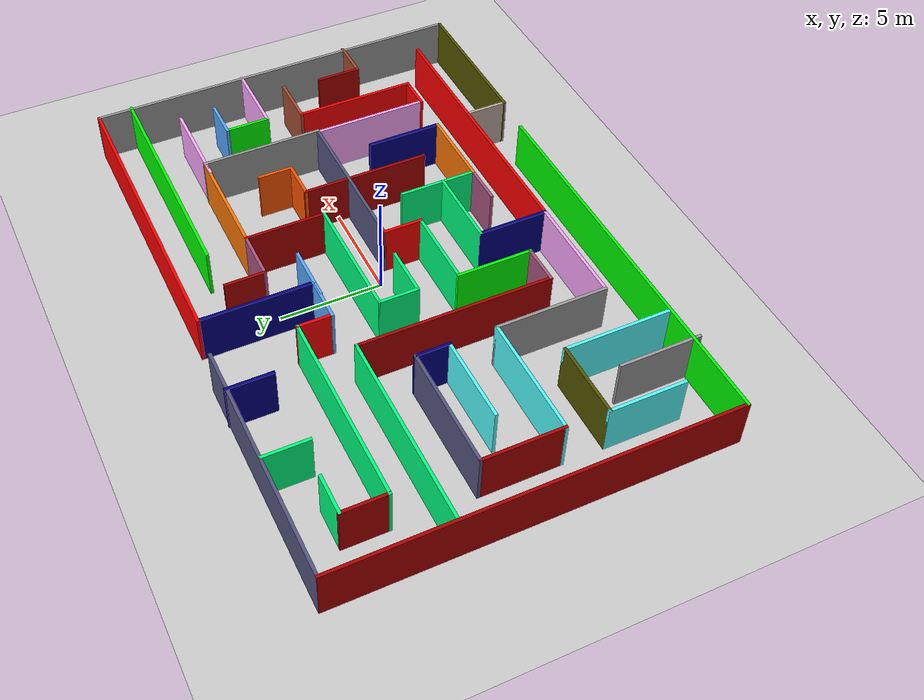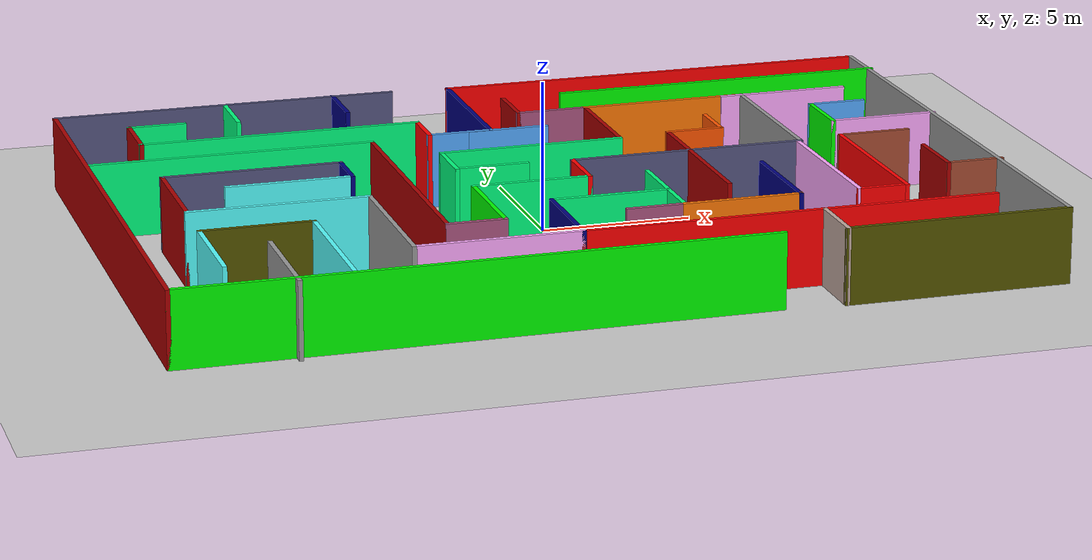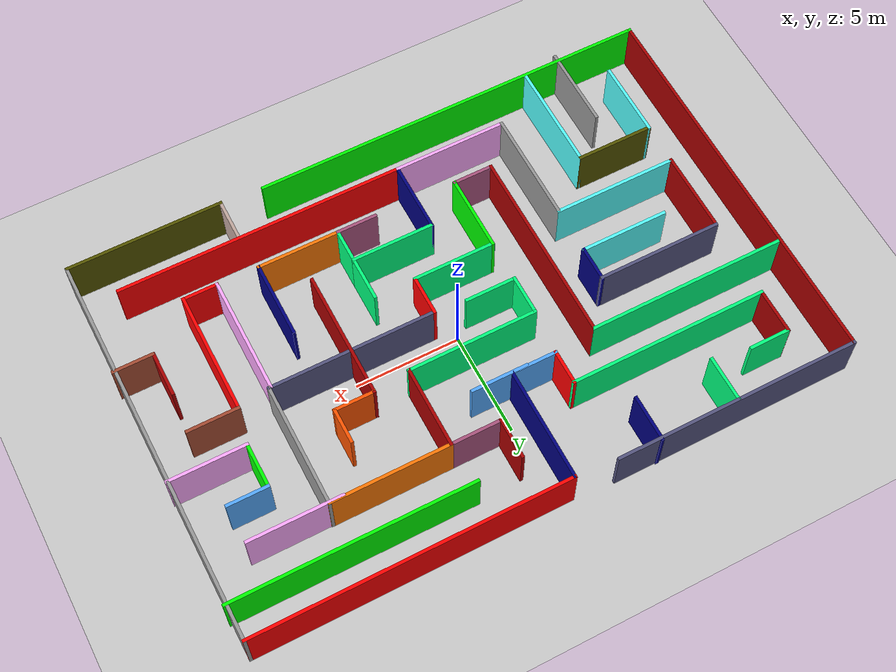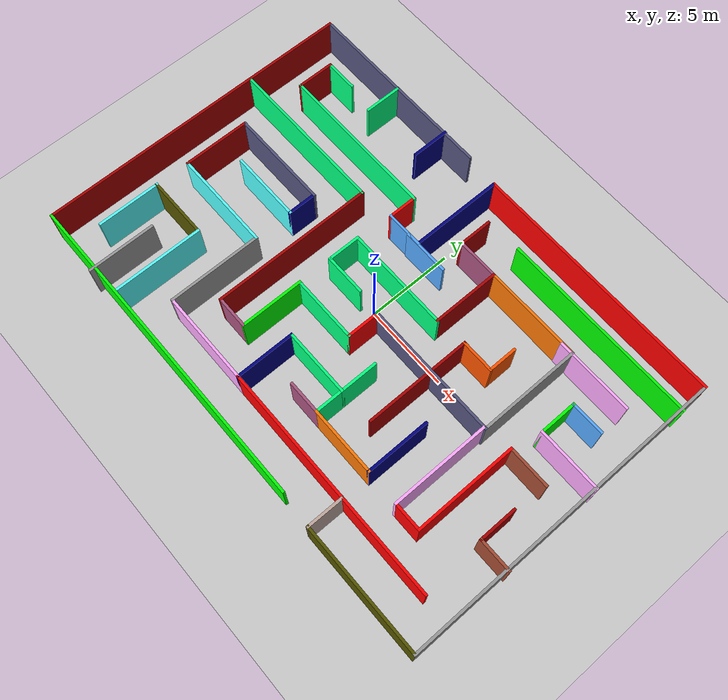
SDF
<sdf version="1.6">
 <world name="default">
  <light name="sun" type="directional">
   <pose>0 0 10 0 -0 0</pose>
   <diffuse>0.8 0.8 0.8 1</diffuse>
   <specular>0.1 0.1 0.1 1</specular>
   <attenuation>
    <range>1000</range>
    <constant>0.9</constant>
    <linear>0.01</linear>
    <quadratic>0.001</quadratic>
   </attenuation>
   <direction>-0.5 0.5 -1</direction>
  </light>
  <model name="ground_plane">
   <static>1</static>
   <link name="link">
    <collision name="collision">
     <geometry><plane><normal>0 0 1</normal><size>100 100</size></plane></geometry>
     <surface><friction><ode><mu>100</mu><mu2>50</mu2></ode></friction></surface>
    </collision>
    <visual name="visual">
     <cast_shadows>0</cast_shadows>
     <geometry><plane><normal>0 0 1</normal><size>100 100</size></plane></geometry>
     <material>
      <script><uri>file://media/materials/scripts/gazebo.material</uri><name>Gazebo/Grey</name></script>
     </material>
    </visual>
   </link>
  </model>
  <gravity>0 0 -9.8</gravity>
  <magnetic_field>6e-06 2.3e-05 -4.2e-05</magnetic_field>
  <atmosphere type="adiabatic"/>
  <physics name="default_physics" default="0" type="ode">
   <max_step_size>0.001</max_step_size>
   <real_time_factor>1</real_time_factor>
   <real_time_update_rate>1000</real_time_update_rate>
  </physics>
  <scene><ambient>0.4 0.4 0.4 1</ambient><background>0.7 0.7 0.7 1</background><shadows>1</shadows></scene>
  <spherical_coordinates>
   <surface_model>EARTH_WGS84</surface_model>
   <latitude_deg>0</latitude_deg>
   <longitude_deg>0</longitude_deg>
   <elevation>0</elevation>
   <heading_deg>0</heading_deg>
  </spherical_coordinates>
  <model name="medium_coloured_maze">
   <pose>-0.057913 -0.424976 0 0 -0 0</pose>
   <link name="Wall_0">
    <collision name="Wall_0_Collision">
     <geometry><box><size>19 0.15 2.5</size></box></geometry>
     <pose>0 0 1.25 0 -0 0</pose>
    </collision>
    <visual name="Wall_0_Visual">
     <pose>0 0 1.25 0 -0 0</pose>
     <geometry><box><size>19 0.15 2.5</size></box></geometry>
     <material>
      <script><uri>file://media/materials/scripts/gazebo.material</uri><name>Gazebo/Grey</name></script>
      <ambient>0.666667 0 0 1</ambient>
     </material>
    </visual>
    <pose>-14.2862 0.111227 0 0 0 -1.5708</pose>
   </link>
   <link name="Wall_1">
    <collision name="Wall_1_Collision">
     <geometry><box><size>19.25 0.15 2.5</size></box></geometry>
     <pose>0 0 1.25 0 -0 0</pose>
    </collision>
    <visual name="Wall_1_Visual">
     <pose>0 0 1.25 0 -0 0</pose>
     <geometry><box><size>19.25 0.15 2.5</size></box></geometry>
     <material>
      <script><uri>file://media/materials/scripts/gazebo.material</uri><name>Gazebo/Grey</name></script>
      <ambient>0 1 0 1</ambient>
     </material>
    </visual>
    <pose>-4.73615 -9.31377 0 0 -0 0</pose>
   </link>
   <link name="Wall_10">
    <collision name="Wall_10_Collision">
     <geometry><box><size>2.25 0.15 2.5</size></box></geometry>
     <pose>0 0 1.25 0 -0 0</pose>
    </collision>
    <visual name="Wall_10_Visual">
     <pose>0 0 1.25 0 -0 0</pose>
     <geometry><box><size>2.25 0.15 2.5</size></box></geometry>
     <material>
      <script><uri>file://media/materials/scripts/gazebo.material</uri><name>Gazebo/Grey</name></script>
      <ambient>0.666667 0 0 1</ambient>
     </material>
    </visual>
    <pose>-12.1169 6.6789 0 0 -0 1.5708</pose>
   </link>
   <link name="Wall_11">
    <collision name="Wall_11_Collision">
     <geometry><box><size>2 0.15 2.5</size></box></geometry>
     <pose>0 0 1.25 0 -0 0</pose>
    </collision>
    <visual name="Wall_11_Visual">
     <pose>0 0 1.25 0 -0 0</pose>
     <geometry><box><size>2 0.15 2.5</size></box></geometry>
     <material>
      <script><uri>file://media/materials/scripts/gazebo.material</uri><name>Gazebo/Grey</name></script>
      <ambient>0 1 0.498039 1</ambient>
     </material>
    </visual>
    <pose>-11.1919 7.7289 0 0 -0 0</pose>
   </link>
   <link name="Wall_13">
    <collision name="Wall_13_Collision">
     <geometry><box><size>11.75 0.15 2.5</size></box></geometry>
     <pose>0 0 1.25 0 -0 0</pose>
    </collision>
    <visual name="Wall_13_Visual">
     <pose>0 0 1.25 0 -0 0</pose>
     <geometry><box><size>11.75 0.15 2.5</size></box></geometry>
     <material>
      <script><uri>file://media/materials/scripts/gazebo.material</uri><name>Gazebo/Grey</name></script>
      <ambient>0.333333 0.333333 0.498039 1</ambient>
     </material>
    </visual>
    <pose>-8.48615 9.53623 0 0 -0 0</pose>
   </link>
   <link name="Wall_15">
    <collision name="Wall_15_Collision">
     <geometry><box><size>2.25 0.15 2.5</size></box></geometry>
     <pose>0 0 1.25 0 -0 0</pose>
    </collision>
    <visual name="Wall_15_Visual">
     <pose>0 0 1.25 0 -0 0</pose>
     <geometry><box><size>2.25 0.15 2.5</size></box></geometry>
     <material>
      <script><uri>file://media/materials/scripts/gazebo.material</uri><name>Gazebo/Grey</name></script>
      <ambient>0 1 0.498039 1</ambient>
     </material>
    </visual>
    <pose>-8.47981 8.45384 0 0 0 -1.5708</pose>
   </link>
   <link name="Wall_18">
    <collision name="Wall_18_Collision">
     <geometry><box><size>2.25 0.15 2.5</size></box></geometry>
     <pose>0 0 1.25 0 -0 0</pose>
    </collision>
    <visual name="Wall_18_Visual">
     <pose>0 0 1.25 0 -0 0</pose>
     <geometry><box><size>2.25 0.15 2.5</size></box></geometry>
     <material>
      <script><uri>file://media/materials/scripts/gazebo.material</uri><name>Gazebo/Grey</name></script>
      <ambient>0 0 0.498039 1</ambient>
     </material>
    </visual>
    <pose>-4.69991 8.53531 0 0 0 -1.5708</pose>
   </link>
   <link name="Wall_20">
    <collision name="Wall_20_Collision">
     <geometry><box><size>9.5 0.15 2.5</size></box></geometry>
     <pose>0 0 1.25 0 -0 0</pose>
    </collision>
    <visual name="Wall_20_Visual">
     <pose>0 0 1.25 0 -0 0</pose>
     <geometry><box><size>9.5 0.15 2.5</size></box></geometry>
     <material>
      <script><uri>file://media/materials/scripts/gazebo.material</uri><name>Gazebo/Grey</name></script>
      <ambient>0 1 0.498039 1</ambient>
     </material>
    </visual>
    <pose>-9.46955 3.79078 0 0 -0 0</pose>
   </link>
   <link name="Wall_21">
    <collision name="Wall_21_Collision">
     <geometry><box><size>9.5 0.15 2.5</size></box></geometry>
     <pose>0 0 1.25 0 -0 0</pose>
    </collision>
    <visual name="Wall_21_Visual">
     <pose>0 0 1.25 0 -0 0</pose>
     <geometry><box><size>9.5 0.15 2.5</size></box></geometry>
     <material>
      <script><uri>file://media/materials/scripts/gazebo.material</uri><name>Gazebo/Grey</name></script>
      <ambient>0.666667 0 0 1</ambient>
     </material>
    </visual>
    <pose>-4.79455 -0.884224 0 0 0 -1.5708</pose>
   </link>
   <link name="Wall_22">
    <collision name="Wall_22_Collision">
     <geometry><box><size>2 0.15 2.5</size></box></geometry>
     <pose>0 0 1.25 0 -0 0</pose>
    </collision>
    <visual name="Wall_22_Visual">
     <pose>0 0 1.25 0 -0 0</pose>
     <geometry><box><size>2 0.15 2.5</size></box></geometry>
     <material>
      <script><uri>file://media/materials/scripts/gazebo.material</uri><name>Gazebo/Grey</name></script>
      <ambient>0.666667 0.333333 0.498039 1</ambient>
     </material>
    </visual>
    <pose>-3.86955 -5.55922 0 0 -0 0</pose>
   </link>
   <link name="Wall_23">
    <collision name="Wall_23_Collision">
     <geometry><box><size>3.75 0.15 2.5</size></box></geometry>
     <pose>0 0 1.25 0 -0 0</pose>
    </collision>
    <visual name="Wall_23_Visual">
     <pose>0 0 1.25 0 -0 0</pose>
     <geometry><box><size>3.75 0.15 2.5</size></box></geometry>
     <material>
      <script><uri>file://media/materials/scripts/gazebo.material</uri><name>Gazebo/Grey</name></script>
      <ambient>0 1 0 1</ambient>
     </material>
    </visual>
    <pose>-2.94455 -3.75922 0 0 -0 1.5708</pose>
   </link>
   <link name="Wall_24">
    <collision name="Wall_24_Collision">
     <geometry><box><size>4 0.15 2.5</size></box></geometry>
     <pose>0 0 1.25 0 -0 0</pose>
    </collision>
    <visual name="Wall_24_Visual">
     <pose>0 0 1.25 0 -0 0</pose>
     <geometry><box><size>4 0.15 2.5</size></box></geometry>
     <material>
      <script><uri>file://media/materials/scripts/gazebo.material</uri><name>Gazebo/Grey</name></script>
      <ambient>0 1 0.498039 1</ambient>
     </material>
    </visual>
    <pose>-1.01955 -1.95922 0 0 -0 0</pose>
   </link>
   <link name="Wall_25">
    <collision name="Wall_25_Collision">
     <geometry><box><size>2 0.15 2.5</size></box></geometry>
     <pose>0 0 1.25 0 -0 0</pose>
    </collision>
    <visual name="Wall_25_Visual">
     <pose>0 0 1.25 0 -0 0</pose>
     <geometry><box><size>2 0.15 2.5</size></box></geometry>
     <material>
      <script><uri>file://media/materials/scripts/gazebo.material</uri><name>Gazebo/Grey</name></script>
      <ambient>1 0 0 1</ambient>
     </material>
    </visual>
    <pose>0.905454 -1.03422 0 0 -0 1.5708</pose>
   </link>
   <link name="Wall_26">
    <collision name="Wall_26_Collision">
     <geometry><box><size>8 0.15 2.5</size></box></geometry>
     <pose>0 0 1.25 0 -0 0</pose>
    </collision>
    <visual name="Wall_26_Visual">
     <pose>0 0 1.25 0 -0 0</pose>
     <geometry><box><size>8 0.15 2.5</size></box></geometry>
     <material>
      <script><uri>file://media/materials/scripts/gazebo.material</uri><name>Gazebo/Grey</name></script>
      <ambient>0.333333 0.333333 0.498039 1</ambient>
     </material>
    </visual>
    <pose>4.83045 -0.109224 0 0 -0 0</pose>
   </link>
   <link name="Wall_27">
    <collision name="Wall_27_Collision">
     <geometry><box><size>6 0.15 2.5</size></box></geometry>
     <pose>0 0 1.25 0 -0 0</pose>
    </collision>
    <visual name="Wall_27_Visual">
     <pose>0 0 1.25 0 -0 0</pose>
     <geometry><box><size>6 0.15 2.5</size></box></geometry>
     <material>
      <script><uri>file://media/materials/scripts/gazebo.material</uri><name>Gazebo/Grey</name></script>
      <ambient>0 0 0 1</ambient>
     </material>
    </visual>
    <pose>8.75545 2.81578 0 0 -0 1.5708</pose>
   </link>
   <link name="Wall_28">
    <collision name="Wall_28_Collision">
     <geometry><box><size>5.75 0.15 2.5</size></box></geometry>
     <pose>0 0 1.25 0 -0 0</pose>
    </collision>
    <visual name="Wall_28_Visual">
     <pose>0 0 1.25 0 -0 0</pose>
     <geometry><box><size>5.75 0.15 2.5</size></box></geometry>
     <material>
      <script><uri>file://media/materials/scripts/gazebo.material</uri><name>Gazebo/Grey</name></script>
      <ambient>0.996078 0.47451 0.0196078 1</ambient>
     </material>
    </visual>
    <pose>5.95545 5.74078 0 0 -0 3.14159</pose>
   </link>
   <link name="Wall_29">
    <collision name="Wall_29_Collision">
     <geometry><box><size>4 0.15 2.5</size></box></geometry>
     <pose>0 0 1.25 0 -0 0</pose>
    </collision>
    <visual name="Wall_29_Visual">
     <pose>0 0 1.25 0 -0 0</pose>
     <geometry><box><size>4 0.15 2.5</size></box></geometry>
     <material>
      <script><uri>file://media/materials/scripts/gazebo.material</uri><name>Gazebo/Grey</name></script>
      <ambient>0.666667 0 0 1</ambient>
     </material>
    </visual>
    <pose>3.15545 3.81578 0 0 0 -1.5708</pose>
   </link>
   <link name="Wall_3">
    <collision name="Wall_3_Collision">
     <geometry><box><size>7.5 0.15 2.5</size></box></geometry>
     <pose>0 0 1.25 0 -0 0</pose>
    </collision>
    <visual name="Wall_3_Visual">
     <pose>0 0 1.25 0 -0 0</pose>
     <geometry><box><size>7.5 0.15 2.5</size></box></geometry>
     <material>
      <script><uri>file://media/materials/scripts/gazebo.material</uri><name>Gazebo/Grey</name></script>
      <ambient>0.333333 0.333333 0 1</ambient>
     </material>
    </visual>
    <pose>10.5081 -9.4711 0 0 -0 0</pose>
   </link>
   <link name="Wall_30">
    <collision name="Wall_30_Collision">
     <geometry><box><size>6.25 0.15 2.5</size></box></geometry>
     <pose>0 0 1.25 0 -0 0</pose>
    </collision>
    <visual name="Wall_30_Visual">
     <pose>0 0 1.25 0 -0 0</pose>
     <geometry><box><size>6.25 0.15 2.5</size></box></geometry>
     <material>
      <script><uri>file://media/materials/scripts/gazebo.material</uri><name>Gazebo/Grey</name></script>
      <ambient>0 1 0.498039 1</ambient>
     </material>
    </visual>
    <pose>0.105454 1.89078 0 0 -0 3.14159</pose>
   </link>
   <link name="Wall_31">
    <collision name="Wall_31_Collision">
     <geometry><box><size>2 0.15 2.5</size></box></geometry>
     <pose>0 0 1.25 0 -0 0</pose>
    </collision>
    <visual name="Wall_31_Visual">
     <pose>0 0 1.25 0 -0 0</pose>
     <geometry><box><size>2 0.15 2.5</size></box></geometry>
     <material>
      <script><uri>file://media/materials/scripts/gazebo.material</uri><name>Gazebo/Grey</name></script>
      <ambient>0 1 0.498039 1</ambient>
     </material>
    </visual>
    <pose>-2.94455 0.965776 0 0 0 -1.5708</pose>
   </link>
   <link name="Wall_32">
    <collision name="Wall_32_Collision">
     <geometry><box><size>2.5 0.15 2.5</size></box></geometry>
     <pose>0 0 1.25 0 -0 0</pose>
    </collision>
    <visual name="Wall_32_Visual">
     <pose>0 0 1.25 0 -0 0</pose>
     <geometry><box><size>2.5 0.15 2.5</size></box></geometry>
     <material>
      <script><uri>file://media/materials/scripts/gazebo.material</uri><name>Gazebo/Grey</name></script>
      <ambient>0 1 0.498039 1</ambient>
     </material>
    </visual>
    <pose>-1.76955 0.040776 0 0 -0 0</pose>
   </link>
   <link name="Wall_34">
    <collision name="Wall_34_Collision">
     <geometry><box><size>4.25 0.15 2.5</size></box></geometry>
     <pose>0 0 1.25 0 -0 0</pose>
    </collision>
    <visual name="Wall_34_Visual">
     <pose>0 0 1.25 0 -0 0</pose>
     <geometry><box><size>4.25 0.15 2.5</size></box></geometry>
     <material>
      <script><uri>file://media/materials/scripts/gazebo.material</uri><name>Gazebo/Grey</name></script>
      <ambient>0.333333 1 1 1</ambient>
     </material>
    </visual>
    <pose>-8.39882 0.186302 0 0 -0 0</pose>
   </link>
   <link name="Wall_35">
    <collision name="Wall_35_Collision">
     <geometry><box><size>1.75 0.15 2.5</size></box></geometry>
     <pose>0 0 1.25 0 -0 0</pose>
    </collision>
    <visual name="Wall_35_Visual">
     <pose>0 0 1.25 0 -0 0</pose>
     <geometry><box><size>1.75 0.15 2.5</size></box></geometry>
     <material>
      <script><uri>file://media/materials/scripts/gazebo.material</uri><name>Gazebo/Grey</name></script>
      <ambient>0 0 0.498039 1</ambient>
     </material>
    </visual>
    <pose>-6.34882 0.986302 0 0 -0 1.5708</pose>
   </link>
   <link name="Wall_36">
    <collision name="Wall_36_Collision">
     <geometry><box><size>6 0.15 2.5</size></box></geometry>
     <pose>0 0 1.25 0 -0 0</pose>
    </collision>
    <visual name="Wall_36_Visual">
     <pose>0 0 1.25 0 -0 0</pose>
     <geometry><box><size>6 0.15 2.5</size></box></geometry>
     <material>
      <script><uri>file://media/materials/scripts/gazebo.material</uri><name>Gazebo/Grey</name></script>
      <ambient>0.333333 0.333333 0.498039 1</ambient>
     </material>
    </visual>
    <pose>-9.27382 1.7863 0 0 -0 3.14159</pose>
   </link>
   <link name="Wall_37">
    <collision name="Wall_37_Collision">
     <geometry><box><size>4 0.15 2.5</size></box></geometry>
     <pose>0 0 1.25 0 -0 0</pose>
    </collision>
    <visual name="Wall_37_Visual">
     <pose>0 0 1.25 0 -0 0</pose>
     <geometry><box><size>4 0.15 2.5</size></box></geometry>
     <material>
      <script><uri>file://media/materials/scripts/gazebo.material</uri><name>Gazebo/Grey</name></script>
      <ambient>0.666667 0 0 1</ambient>
     </material>
    </visual>
    <pose>-12.1988 -0.138698 0 0 0 -1.5708</pose>
   </link>
   <link name="Wall_38">
    <collision name="Wall_38_Collision">
     <geometry><box><size>6 0.15 2.5</size></box></geometry>
     <pose>0 0 1.25 0 -0 0</pose>
    </collision>
    <visual name="Wall_38_Visual">
     <pose>0 0 1.25 0 -0 0</pose>
     <geometry><box><size>6 0.15 2.5</size></box></geometry>
     <material>
      <script><uri>file://media/materials/scripts/gazebo.material</uri><name>Gazebo/Grey</name></script>
      <ambient>0.333333 1 1 1</ambient>
     </material>
    </visual>
    <pose>-9.27382 -2.0637 0 0 -0 0</pose>
   </link>
   <link name="Wall_39">
    <collision name="Wall_39_Collision">
     <geometry><box><size>5.5 0.15 2.5</size></box></geometry>
     <pose>0 0 1.25 0 -0 0</pose>
    </collision>
    <visual name="Wall_39_Visual">
     <pose>0 0 1.25 0 -0 0</pose>
     <geometry><box><size>5.5 0.15 2.5</size></box></geometry>
     <material>
      <script><uri>file://media/materials/scripts/gazebo.material</uri><name>Gazebo/Grey</name></script>
      <ambient>0 0 0 1</ambient>
     </material>
    </visual>
    <pose>-6.34882 -4.7387 0 0 0 -1.5708</pose>
   </link>
   <link name="Wall_4">
    <collision name="Wall_4_Collision">
     <geometry><box><size>19 0.15 2.5</size></box></geometry>
     <pose>0 0 1.25 0 -0 0</pose>
    </collision>
    <visual name="Wall_4_Visual">
     <pose>0 0 1.25 0 -0 0</pose>
     <geometry><box><size>19 0.15 2.5</size></box></geometry>
     <material>
      <script><uri>file://media/materials/scripts/gazebo.material</uri><name>Gazebo/Grey</name></script>
      <ambient>0 0 0 1</ambient>
     </material>
    </visual>
    <pose>14.1831 -0.046098 0 0 -0 1.5708</pose>
   </link>
   <link name="Wall_40">
    <collision name="Wall_40_Collision">
     <geometry><box><size>5.5 0.15 2.5</size></box></geometry>
     <pose>0 0 1.25 0 -0 0</pose>
    </collision>
    <visual name="Wall_40_Visual">
     <pose>0 0 1.25 0 -0 0</pose>
     <geometry><box><size>5.5 0.15 2.5</size></box></geometry>
     <material>
      <script><uri>file://media/materials/scripts/gazebo.material</uri><name>Gazebo/Grey</name></script>
      <ambient>1 0.666667 1 1</ambient>
     </material>
    </visual>
    <pose>-3.67382 -7.4137 0 0 -0 0</pose>
   </link>
   <link name="Wall_41">
    <collision name="Wall_41_Collision">
     <geometry><box><size>3.5 0.15 2.5</size></box></geometry>
     <pose>0 0 1.25 0 -0 0</pose>
    </collision>
    <visual name="Wall_41_Visual">
     <pose>0 0 1.25 0 -0 0</pose>
     <geometry><box><size>3.5 0.15 2.5</size></box></geometry>
     <material>
      <script><uri>file://media/materials/scripts/gazebo.material</uri><name>Gazebo/Grey</name></script>
      <ambient>0 0 0.498039 1</ambient>
     </material>
    </visual>
    <pose>-0.99882 -5.7387 0 0 -0 1.5708</pose>
   </link>
   <link name="Wall_42">
    <collision name="Wall_42_Collision">
     <geometry><box><size>4 0.15 2.5</size></box></geometry>
     <pose>0 0 1.25 0 -0 0</pose>
    </collision>
    <visual name="Wall_42_Visual">
     <pose>0 0 1.25 0 -0 0</pose>
     <geometry><box><size>4 0.15 2.5</size></box></geometry>
     <material>
      <script><uri>file://media/materials/scripts/gazebo.material</uri><name>Gazebo/Grey</name></script>
      <ambient>0 1 0.498039 1</ambient>
     </material>
    </visual>
    <pose>0.92618 -4.0637 0 0 -0 0</pose>
   </link>
   <link name="Wall_43">
    <collision name="Wall_43_Collision">
     <geometry><box><size>1.75 0.15 2.5</size></box></geometry>
     <pose>0 0 1.25 0 -0 0</pose>
    </collision>
    <visual name="Wall_43_Visual">
     <pose>0 0 1.25 0 -0 0</pose>
     <geometry><box><size>1.75 0.15 2.5</size></box></geometry>
     <material>
      <script><uri>file://media/materials/scripts/gazebo.material</uri><name>Gazebo/Grey</name></script>
      <ambient>0 1 0.498039 1</ambient>
     </material>
    </visual>
    <pose>2.85118 -4.8637 0 0 0 -1.5708</pose>
   </link>
   <link name="Wall_44">
    <collision name="Wall_44_Collision">
     <geometry><box><size>4 0.15 2.5</size></box></geometry>
     <pose>0 0 1.25 0 -0 0</pose>
    </collision>
    <visual name="Wall_44_Visual">
     <pose>0 0 1.25 0 -0 0</pose>
     <geometry><box><size>4 0.15 2.5</size></box></geometry>
     <material>
      <script><uri>file://media/materials/scripts/gazebo.material</uri><name>Gazebo/Grey</name></script>
      <ambient>0.996078 0.47451 0.0196078 1</ambient>
     </material>
    </visual>
    <pose>4.77618 -5.6637 0 0 -0 0</pose>
   </link>
   <link name="Wall_45">
    <collision name="Wall_45_Collision">
     <geometry><box><size>3.75 0.15 2.5</size></box></geometry>
     <pose>0 0 1.25 0 -0 0</pose>
    </collision>
    <visual name="Wall_45_Visual">
     <pose>0 0 1.25 0 -0 0</pose>
     <geometry><box><size>3.75 0.15 2.5</size></box></geometry>
     <material>
      <script><uri>file://media/materials/scripts/gazebo.material</uri><name>Gazebo/Grey</name></script>
      <ambient>0 0 0.498039 1</ambient>
     </material>
    </visual>
    <pose>6.70118 -3.8637 0 0 -0 1.5708</pose>
   </link>
   <link name="Wall_47">
    <collision name="Wall_47_Collision">
     <geometry><box><size>1.75 0.15 2.5</size></box></geometry>
     <pose>0 0 1.25 0 -0 0</pose>
    </collision>
    <visual name="Wall_47_Visual">
     <pose>0 0 1.25 0 -0 0</pose>
     <geometry><box><size>1.75 0.15 2.5</size></box></geometry>
     <material>
      <script><uri>file://media/materials/scripts/gazebo.material</uri><name>Gazebo/Grey</name></script>
      <ambient>1 0.333333 0 1</ambient>
     </material>
    </visual>
    <pose>6.75228 2.89952 0 0 0 -1.5708</pose>
   </link>
   <link name="Wall_48">
    <collision name="Wall_48_Collision">
     <geometry><box><size>2 0.15 2.5</size></box></geometry>
     <pose>0 0 1.25 0 -0 0</pose>
    </collision>
    <visual name="Wall_48_Visual">
     <pose>0 0 1.25 0 -0 0</pose>
     <geometry><box><size>2 0.15 2.5</size></box></geometry>
     <material>
      <script><uri>file://media/materials/scripts/gazebo.material</uri><name>Gazebo/Grey</name></script>
      <ambient>1 0.333333 0 1</ambient>
     </material>
    </visual>
    <pose>5.82728 2.09952 0 0 -0 3.14159</pose>
   </link>
   <link name="Wall_49">
    <collision name="Wall_49_Collision">
     <geometry><box><size>6.25 0.15 2.5</size></box></geometry>
     <pose>0 0 1.25 0 -0 0</pose>
    </collision>
    <visual name="Wall_49_Visual">
     <pose>0 0 1.25 0 -0 0</pose>
     <geometry><box><size>6.25 0.15 2.5</size></box></geometry>
     <material>
      <script><uri>file://media/materials/scripts/gazebo.material</uri><name>Gazebo/Grey</name></script>
      <ambient>0.666667 0 0 1</ambient>
     </material>
    </visual>
    <pose>4.90228 -0.950477 0 0 0 -1.5708</pose>
   </link>
   <link name="Wall_5">
    <collision name="Wall_5_Collision">
     <geometry><box><size>15 0.15 2.5</size></box></geometry>
     <pose>0 0 1.25 0 -0 0</pose>
    </collision>
    <visual name="Wall_5_Visual">
     <pose>0 0 1.25 0 -0 0</pose>
     <geometry><box><size>15 0.15 2.5</size></box></geometry>
     <material>
      <script><uri>file://media/materials/scripts/gazebo.material</uri><name>Gazebo/Grey</name></script>
      <ambient>1 0 0 1</ambient>
     </material>
    </visual>
    <pose>6.7581 9.3789 0 0 -0 3.14159</pose>
   </link>
   <link name="Wall_51">
    <collision name="Wall_51_Collision">
     <geometry><box><size>2.25 0.15 2.5</size></box></geometry>
     <pose>0 0 1.25 0 -0 0</pose>
    </collision>
    <visual name="Wall_51_Visual">
     <pose>0 0 1.25 0 -0 0</pose>
     <geometry><box><size>2.25 0.15 2.5</size></box></geometry>
     <material>
      <script><uri>file://media/materials/scripts/gazebo.material</uri><name>Gazebo/Grey</name></script>
      <ambient>0 1 0.498039 1</ambient>
     </material>
    </visual>
    <pose>2.85118 -3.0137 0 0 -0 1.5708</pose>
   </link>
   <link name="Wall_53">
    <collision name="Wall_53_Collision">
     <geometry><box><size>2 0.15 2.5</size></box></geometry>
     <pose>0 0 1.25 0 -0 0</pose>
    </collision>
    <visual name="Wall_53_Visual">
     <pose>0 0 1.25 0 -0 0</pose>
     <geometry><box><size>2 0.15 2.5</size></box></geometry>
     <material>
      <script><uri>file://media/materials/scripts/gazebo.material</uri><name>Gazebo/Grey</name></script>
      <ambient>0.666667 0.333333 0.498039 1</ambient>
     </material>
    </visual>
    <pose>1.92618 -5.6637 0 0 -0 3.14159</pose>
   </link>
   <link name="Wall_56">
    <collision name="Wall_56_Collision">
     <geometry><box><size>13.75 0.15 2.5</size></box></geometry>
     <pose>0 0 1.25 0 -0 0</pose>
    </collision>
    <visual name="Wall_56_Visual">
     <pose>0 0 1.25 0 -0 0</pose>
     <geometry><box><size>13.75 0.15 2.5</size></box></geometry>
     <material>
      <script><uri>file://media/materials/scripts/gazebo.material</uri><name>Gazebo/Grey</name></script>
      <ambient>1 0 0 1</ambient>
     </material>
    </visual>
    <pose>5.80118 -7.4137 0 0 -0 0</pose>
   </link>
   <link name="Wall_58">
    <collision name="Wall_58_Collision">
     <geometry><box><size>2.16629 0.15 2.5</size></box></geometry>
     <pose>0 0 1.25 0 -0 0</pose>
    </collision>
    <visual name="Wall_58_Visual">
     <pose>0 0 1.25 0 -0 0</pose>
     <geometry><box><size>2.16629 0.15 2.5</size></box></geometry>
     <material>
      <script><uri>file://media/materials/scripts/gazebo.material</uri><name>Gazebo/Grey</name></script>
      <ambient>0.760784 0.662745 0.627451 1</ambient>
     </material>
    </visual>
    <pose>6.84013 -8.46298 0 0 0 -1.57777</pose>
   </link>
   <link name="Wall_6">
    <collision name="Wall_6_Collision">
     <geometry><box><size>5.5 0.15 2.5</size></box></geometry>
     <pose>0 0 1.25 0 -0 0</pose>
    </collision>
    <visual name="Wall_6_Visual">
     <pose>0 0 1.25 0 -0 0</pose>
     <geometry><box><size>5.5 0.15 2.5</size></box></geometry>
     <material>
      <script><uri>file://media/materials/scripts/gazebo.material</uri><name>Gazebo/Grey</name></script>
      <ambient>0 0 0.498039 1</ambient>
     </material>
    </visual>
    <pose>-0.666901 6.7039 0 0 0 -1.5708</pose>
   </link>
   <link name="Wall_60">
    <collision name="Wall_60_Collision">
     <geometry><box><size>2.5 0.15 2.5</size></box></geometry>
     <pose>0 0 1.25 0 -0 0</pose>
    </collision>
    <visual name="Wall_60_Visual">
     <pose>0 0 1.25 0 -0 0</pose>
     <geometry><box><size>2.5 0.15 2.5</size></box></geometry>
     <material>
      <script><uri>file://media/materials/scripts/gazebo.material</uri><name>Gazebo/Bricks</name></script>
      <ambient>1 1 1 1</ambient>
     </material>
    </visual>
    <pose>11.4337 0.135142 0 0 -0 3.14159</pose>
   </link>
   <link name="Wall_61">
    <collision name="Wall_61_Collision">
     <geometry><box><size>6 0.15 2.5</size></box></geometry>
     <pose>0 0 1.25 0 -0 0</pose>
    </collision>
    <visual name="Wall_61_Visual">
     <pose>0 0 1.25 0 -0 0</pose>
     <geometry><box><size>6 0.15 2.5</size></box></geometry>
     <material>
      <script><uri>file://media/materials/scripts/gazebo.material</uri><name>Gazebo/Grey</name></script>
      <ambient>1 0 0 1</ambient>
     </material>
    </visual>
    <pose>10.2587 -2.78986 0 0 0 -1.5708</pose>
   </link>
   <link name="Wall_62">
    <collision name="Wall_62_Collision">
     <geometry><box><size>1.75 0.15 2.5</size></box></geometry>
     <pose>0 0 1.25 0 -0 0</pose>
    </collision>
    <visual name="Wall_62_Visual">
     <pose>0 0 1.25 0 -0 0</pose>
     <geometry><box><size>1.75 0.15 2.5</size></box></geometry>
     <material>
      <script><uri>file://media/materials/scripts/gazebo.material</uri><name>Gazebo/Grey</name></script>
      <ambient>1 0 0 1</ambient>
     </material>
    </visual>
    <pose>9.45865 -5.71486 0 0 -0 3.14159</pose>
   </link>
   <link name="Wall_63">
    <collision name="Wall_63_Collision">
     <geometry><box><size>5.75 0.15 2.5</size></box></geometry>
     <pose>0 0 1.25 0 -0 0</pose>
    </collision>
    <visual name="Wall_63_Visual">
     <pose>0 0 1.25 0 -0 0</pose>
     <geometry><box><size>5.75 0.15 2.5</size></box></geometry>
     <material>
      <script><uri>file://media/materials/scripts/gazebo.material</uri><name>Gazebo/Grey</name></script>
      <ambient>1 0.666667 1 1</ambient>
     </material>
    </visual>
    <pose>8.65865 -2.91486 0 0 -0 1.5708</pose>
   </link>
   <link name="Wall_65">
    <collision name="Wall_65_Collision">
     <geometry><box><size>2.25 0.15 2.5</size></box></geometry>
     <pose>0 0 1.25 0 -0 0</pose>
    </collision>
    <visual name="Wall_65_Visual">
     <pose>0 0 1.25 0 -0 0</pose>
     <geometry><box><size>2.25 0.15 2.5</size></box></geometry>
     <material>
      <script><uri>file://media/materials/scripts/gazebo.material</uri><name>Gazebo/Grey</name></script>
      <ambient>0.666667 0 0 1</ambient>
     </material>
    </visual>
    <pose>12.4362 -2.81236 0 0 0 -1.5708</pose>
   </link>
   <link name="Wall_66">
    <collision name="Wall_66_Collision">
     <geometry><box><size>2 0.15 2.5</size></box></geometry>
     <pose>0 0 1.25 0 -0 0</pose>
    </collision>
    <visual name="Wall_66_Visual">
     <pose>0 0 1.25 0 -0 0</pose>
     <geometry><box><size>2 0.15 2.5</size></box></geometry>
     <material>
      <script><uri>file://media/materials/scripts/gazebo.material</uri><name>Gazebo/Bricks</name></script>
      <ambient>1 1 1 1</ambient>
     </material>
    </visual>
    <pose>13.3612 -3.86236 0 0 -0 0</pose>
   </link>
   <link name="Wall_68">
    <collision name="Wall_68_Collision">
     <geometry><box><size>11.5 0.15 2.5</size></box></geometry>
     <pose>0 0 1.25 0 -0 0</pose>
    </collision>
    <visual name="Wall_68_Visual">
     <pose>0 0 1.25 0 -0 0</pose>
     <geometry><box><size>11.5 0.15 2.5</size></box></geometry>
     <material>
      <script><uri>file://media/materials/scripts/gazebo.material</uri><name>Gazebo/Grey</name></script>
      <ambient>0 1 0 1</ambient>
     </material>
    </visual>
    <pose>8.60983 7.69706 0 0 -0 0</pose>
   </link>
   <link name="Wall_7">
    <collision name="Wall_7_Collision">
     <geometry><box><size>2.25 0.15 2.5</size></box></geometry>
     <pose>0 0 1.25 0 -0 0</pose>
    </collision>
    <visual name="Wall_7_Visual">
     <pose>0 0 1.25 0 -0 0</pose>
     <geometry><box><size>2.25 0.15 2.5</size></box></geometry>
     <material>
      <script><uri>file://media/materials/scripts/gazebo.material</uri><name>Gazebo/Grey</name></script>
      <ambient>0.333333 0.666667 1 1</ambient>
     </material>
    </visual>
    <pose>-1.7169 4.0289 0 0 -0 3.14159</pose>
   </link>
   <link name="Wall_70">
    <collision name="Wall_70_Collision">
     <geometry><box><size>2 0.15 2.5</size></box></geometry>
     <pose>0 0 1.25 0 -0 0</pose>
    </collision>
    <visual name="Wall_70_Visual">
     <pose>0 0 1.25 0 -0 0</pose>
     <geometry><box><size>2 0.15 2.5</size></box></geometry>
     <material>
      <script><uri>file://media/materials/scripts/gazebo.material</uri><name>Gazebo/Grey</name></script>
      <ambient>0.333333 0.666667 1 1</ambient>
     </material>
    </visual>
    <pose>11.5594 3.91921 0 0 -0 3.14159</pose>
   </link>
   <link name="Wall_71">
    <collision name="Wall_71_Collision">
     <geometry><box><size>2.25 0.15 2.5</size></box></geometry>
     <pose>0 0 1.25 0 -0 0</pose>
    </collision>
    <visual name="Wall_71_Visual">
     <pose>0 0 1.25 0 -0 0</pose>
     <geometry><box><size>2.25 0.15 2.5</size></box></geometry>
     <material>
      <script><uri>file://media/materials/scripts/gazebo.material</uri><name>Gazebo/Grey</name></script>
      <ambient>0 1 0 1</ambient>
     </material>
    </visual>
    <pose>10.6344 2.86921 0 0 0 -1.5708</pose>
   </link>
   <link name="Wall_72">
    <collision name="Wall_72_Collision">
     <geometry><box><size>3.75 0.15 2.5</size></box></geometry>
     <pose>0 0 1.25 0 -0 0</pose>
    </collision>
    <visual name="Wall_72_Visual">
     <pose>0 0 1.25 0 -0 0</pose>
     <geometry><box><size>3.75 0.15 2.5</size></box></geometry>
     <material>
      <script><uri>file://media/materials/scripts/gazebo.material</uri><name>Gazebo/Grey</name></script>
      <ambient>1 0.666667 1 1</ambient>
     </material>
    </visual>
    <pose>12.4344 1.81921 0 0 -0 0</pose>
   </link>
   <link name="Wall_74">
    <collision name="Wall_74_Collision">
     <geometry><box><size>3.75 0.15 2.5</size></box></geometry>
     <pose>0 0 1.25 0 -0 0</pose>
    </collision>
    <visual name="Wall_74_Visual">
     <pose>0 0 1.25 0 -0 0</pose>
     <geometry><box><size>3.75 0.15 2.5</size></box></geometry>
     <material>
      <script><uri>file://media/materials/scripts/gazebo.material</uri><name>Gazebo/Grey</name></script>
      <ambient>0.333333 1 1 1</ambient>
     </material>
    </visual>
    <pose>-12.2291 -5.87671 0 0 -0 1.5708</pose>
   </link>
   <link name="Wall_75">
    <collision name="Wall_75_Collision">
     <geometry><box><size>3.75 0.15 2.5</size></box></geometry>
     <pose>0 0 1.25 0 -0 0</pose>
    </collision>
    <visual name="Wall_75_Visual">
     <pose>0 0 1.25 0 -0 0</pose>
     <geometry><box><size>3.75 0.15 2.5</size></box></geometry>
     <material>
      <script><uri>file://media/materials/scripts/gazebo.material</uri><name>Gazebo/Grey</name></script>
      <ambient>0.333333 0.333333 0 1</ambient>
     </material>
    </visual>
    <pose>-10.4291 -4.07671 0 0 -0 0</pose>
   </link>
   <link name="Wall_76">
    <collision name="Wall_76_Collision">
     <geometry><box><size>5.25 0.15 2.5</size></box></geometry>
     <pose>0 0 1.25 0 -0 0</pose>
    </collision>
    <visual name="Wall_76_Visual">
     <pose>0 0 1.25 0 -0 0</pose>
     <geometry><box><size>5.25 0.15 2.5</size></box></geometry>
     <material>
      <script><uri>file://media/materials/scripts/gazebo.material</uri><name>Gazebo/Grey</name></script>
      <ambient>0.333333 1 1 1</ambient>
     </material>
    </visual>
    <pose>-8.62905 -6.62671 0 0 0 -1.5708</pose>
   </link>
   <link name="Wall_78">
    <collision name="Wall_78_Collision">
     <geometry><box><size>4 0.15 2.5</size></box></geometry>
     <pose>0 0 1.25 0 -0 0</pose>
    </collision>
    <visual name="Wall_78_Visual">
     <pose>0 0 1.25 0 -0 0</pose>
     <geometry><box><size>4 0.15 2.5</size></box></geometry>
     <material>
      <script><uri>file://media/materials/scripts/gazebo.material</uri><name>Gazebo/Grey</name></script>
      <ambient>0 0 0 1</ambient>
     </material>
    </visual>
    <pose>-10.3926 -7.66031 0 0 0 -1.5708</pose>
   </link>
   <link name="Wall_8">
    <collision name="Wall_8_Collision">
     <geometry><box><size>1.75 0.15 2.5</size></box></geometry>
     <pose>0 0 1.25 0 -0 0</pose>
    </collision>
    <visual name="Wall_8_Visual">
     <pose>0 0 1.25 0 -0 0</pose>
     <geometry><box><size>1.75 0.15 2.5</size></box></geometry>
     <material>
      <script><uri>file://media/materials/scripts/gazebo.material</uri><name>Gazebo/Grey</name></script>
      <ambient>1 0 0 1</ambient>
     </material>
    </visual>
    <pose>-2.7669 4.8289 0 0 -0 1.5708</pose>
   </link>
   <link name="Wall_80">
    <collision name="Wall_80_Collision">
     <geometry><box><size>4.5 0.15 2.5</size></box></geometry>
     <pose>0 0 1.25 0 -0 0</pose>
    </collision>
    <visual name="Wall_80_Visual">
     <pose>0 0 1.25 0 -0 0</pose>
     <geometry><box><size>4.5 0.15 2.5</size></box></geometry>
     <material>
      <script><uri>file://media/materials/scripts/gazebo.material</uri><name>Gazebo/Grey</name></script>
      <ambient>1 0.666667 1 1</ambient>
     </material>
    </visual>
    <pose>10.2519 5.70319 0 0 -0 0</pose>
   </link>
   <link name="Wall_84">
    <collision name="Wall_84_Collision">
     <geometry><box><size>2.75 0.15 2.5</size></box></geometry>
     <pose>0 0 1.25 0 -0 0</pose>
    </collision>
    <visual name="Wall_84_Visual">
     <pose>0 0 1.25 0 -0 0</pose>
     <geometry><box><size>2.75 0.15 2.5</size></box></geometry>
     <material>
      <script><uri>file://media/materials/scripts/gazebo.material</uri><name>Gazebo/Grey</name></script>
      <ambient>0.333333 0.666667 1 1</ambient>
     </material>
    </visual>
    <pose>-0.070687 3.99264 0 0 -0 0</pose>
   </link>
   <link name="Wall_86">
    <collision name="Wall_86_Collision">
     <geometry><box><size>2.5 0.15 2.5</size></box></geometry>
     <pose>0 0 1.25 0 -0 0</pose>
    </collision>
    <visual name="Wall_86_Visual">
     <pose>0 0 1.25 0 -0 0</pose>
     <geometry><box><size>2.5 0.15 2.5</size></box></geometry>
     <material>
      <script><uri>file://media/materials/scripts/gazebo.material</uri><name>Gazebo/Grey</name></script>
      <ambient>0.666667 0.333333 0.498039 1</ambient>
     </material>
    </visual>
    <pose>1.98045 5.74078 0 0 -0 3.14159</pose>
   </link>
   <link name="Wall_87">
    <collision name="Wall_87_Collision">
     <geometry><box><size>2 0.15 2.5</size></box></geometry>
     <pose>0 0 1.25 0 -0 0</pose>
    </collision>
    <visual name="Wall_87_Visual">
     <pose>0 0 1.25 0 -0 0</pose>
     <geometry><box><size>2 0.15 2.5</size></box></geometry>
     <material>
      <script><uri>file://media/materials/scripts/gazebo.material</uri><name>Gazebo/Grey</name></script>
      <ambient>0.666667 0 0 1</ambient>
     </material>
    </visual>
    <pose>0.805454 6.66578 0 0 -0 1.5708</pose>
   </link>
   <link name="Wall_9">
    <collision name="Wall_9_Collision">
     <geometry><box><size>9.5 0.15 2.5</size></box></geometry>
     <pose>0 0 1.25 0 -0 0</pose>
    </collision>
    <visual name="Wall_9_Visual">
     <pose>0 0 1.25 0 -0 0</pose>
     <geometry><box><size>9.5 0.15 2.5</size></box></geometry>
     <material>
      <script><uri>file://media/materials/scripts/gazebo.material</uri><name>Gazebo/Grey</name></script>
      <ambient>0 1 0.498039 1</ambient>
     </material>
    </visual>
    <pose>-7.4419 5.6289 0 0 -0 3.14159</pose>
   </link>
   <static>1</static>
  </model>
 </world>
</sdf>
